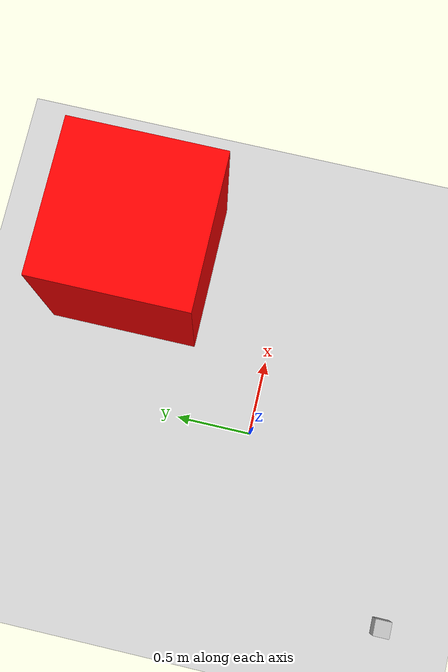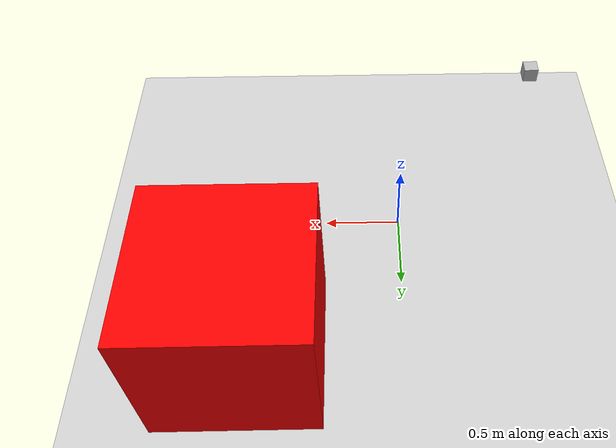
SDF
<sdf version="1.6">
  <world name="empty">
    <gui>
      <plugin filename="ImageDisplay" name="Image Display">
        <topic>/scan_image</topic>
      </plugin>
    </gui>
    <physics name="1ms" type="ignored">
      <max_step_size>0.001</max_step_size>
      <real_time_factor>1.0</real_time_factor>
    </physics>
    <plugin
      filename="gz-sim-physics-system"
      name="gz::sim::systems::Physics">
    </plugin>
    <plugin
      filename="gz-sim-user-commands-system"
      name="gz::sim::systems::UserCommands">
    </plugin>
    <plugin
      filename="gz-sim-scene-broadcaster-system"
      name="gz::sim::systems::SceneBroadcaster">
    </plugin>
    <plugin
      filename="gz-sim-contact-system"
      name="gz::sim::systems::Contact">
    </plugin>
    <plugin
      filename="gz-sim-sensors-system"
      name="gz::sim::systems::Sensors">
      <render_engine>ogre2</render_engine>
    </plugin>

    <light type="directional" name="sun">
      <cast_shadows>true</cast_shadows>
      <pose>0 0 10 0 0 0</pose>
      <diffuse>0.8 0.8 0.8 1</diffuse>
      <specular>0.2 0.2 0.2 1</specular>
      <attenuation>
        <range>1000</range>
        <constant>0.9</constant>
        <linear>0.01</linear>
        <quadratic>0.001</quadratic>
      </attenuation>
      <direction>-0.5 0.1 -0.9</direction>
    </light>

    <model name="model_with_lidar">
        <pose>-1 -1 0.5 0 0 0</pose>
        <link name="link">
            <inertial>
                <mass>0.1</mass>
                <inertia>
                <ixx>0.000166667</ixx>
                <iyy>0.000166667</iyy>
                <izz>0.000166667</izz>
                </inertia>
            </inertial>
            <collision name="collision">
                <geometry>
                <box>
                    <size>0.1 0.1 0.1</size>
                </box>
                </geometry>
            </collision>
            <visual name="visual">
                <geometry>
                <box>
                    <size>0.1 0.1 0.1</size>
                </box>
                </geometry>
            </visual>

            <sensor name='gpu_lidar' type='gpu_lidar'>
                <topic>scan</topic>
                <update_rate>10</update_rate>
                <lidar>
                <scan>
                    <horizontal>
                    <samples>640</samples>
                    <resolution>1</resolution>
                    <min_angle>0</min_angle>
                    <max_angle>6.28</max_angle>
                    </horizontal>
                </scan>
                <range>
                    <min>0.08</min>
                    <max>9.0</max>
                    <resolution>0.01</resolution>
                </range>
                </lidar>
                <visualize>true</visualize>
            </sensor>
        </link>
        <static>true</static>

        <plugin
            filename="gz-sim-free-space-explorer-system"
            name="gz::sim::systems::FreeSpaceExplorer">
            <lidar_topic>/scan</lidar_topic>
            <image_topic>/scan_image</image_topic>
            <start_topic>/start_exploration</start_topic>
            <width>100</width>
            <height>100</height>
            <resolution>0.25</resolution>
            <sensor_link>link</sensor_link>
        </plugin>
    </model>

    <model name="cube">
     <pose>1 1 0.5 0 0 0</pose>
      <link name="box_link">
        <inertial>
          <inertia>
            <ixx>0.16666</ixx>
            <ixy>0</ixy>
            <ixz>0</ixz>
            <iyy>0.16666</iyy>
            <iyz>0</iyz>
            <izz>0.16666</izz>
          </inertia>
          <mass>1.0</mass>
        </inertial>
        <collision name="box_collision">
          <geometry>
            <box>
              <size>1 1 1</size>
            </box>
          </geometry>
        </collision>

        <visual name="box_visual">
          <geometry>
            <box>
              <size>1 1 1</size>
            </box>
          </geometry>
          <material>
            <ambient>1 0 0 1</ambient>
            <diffuse>1 0 0 1</diffuse>
            <specular>1 0 0 1</specular>
          </material>
        </visual>
      </link>
    </model>

    <model name="ground_plane">
      <static>true</static>
      <link name="link">
        <collision name="collision">
          <geometry>
            <plane>
              <normal>0 0 1</normal>
              <size>100 100</size>
            </plane>
          </geometry>
        </collision>
        <visual name="visual">
          <geometry>
            <plane>
              <normal>0 0 1</normal>
              <size>100 100</size>
            </plane>
          </geometry>
          <material>
            <ambient>0.8 0.8 0.8 1</ambient>
            <diffuse>0.8 0.8 0.8 1</diffuse>
            <specular>0.8 0.8 0.8 1</specular>
          </material>
        </visual>
      </link>
    </model>

  </world>
</sdf>
